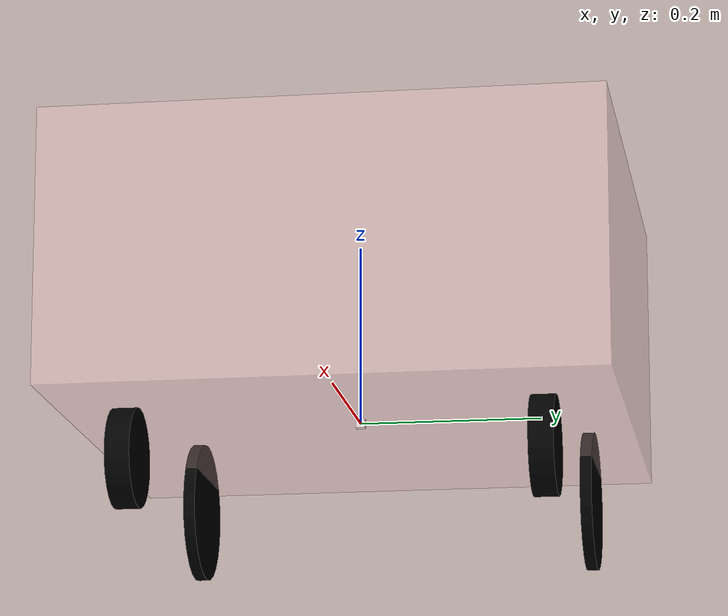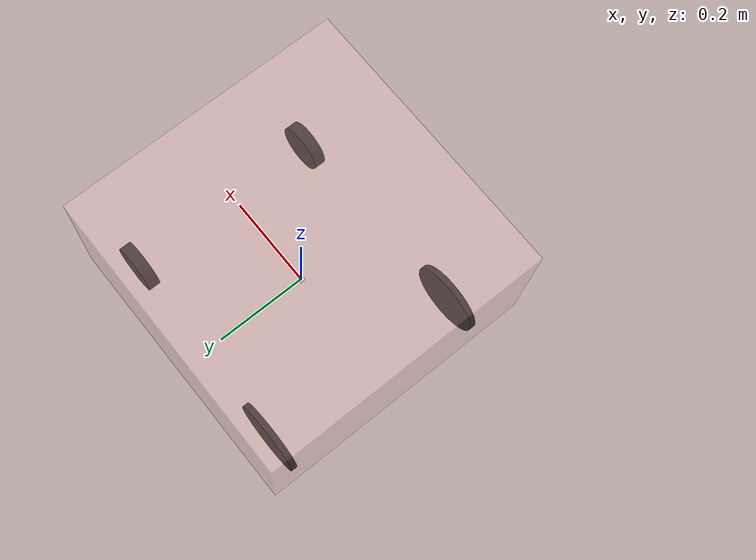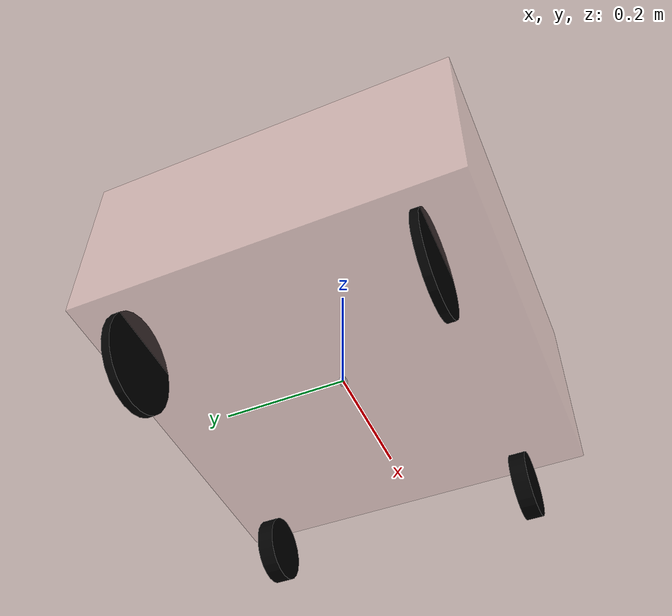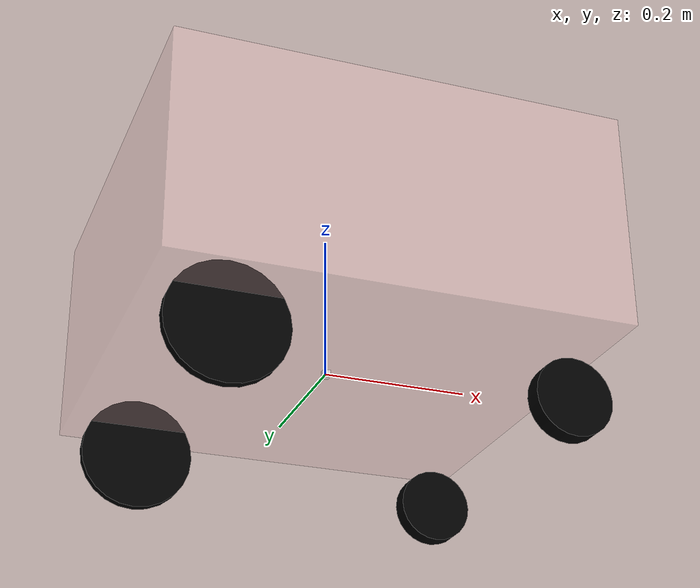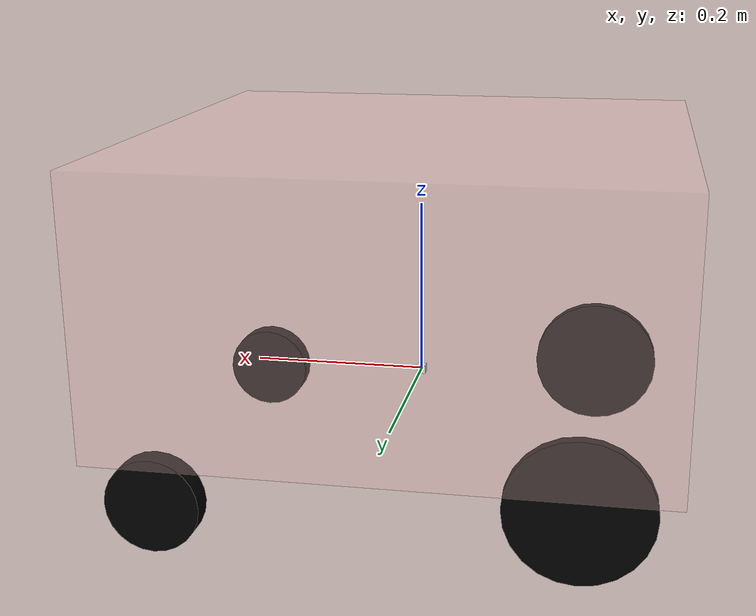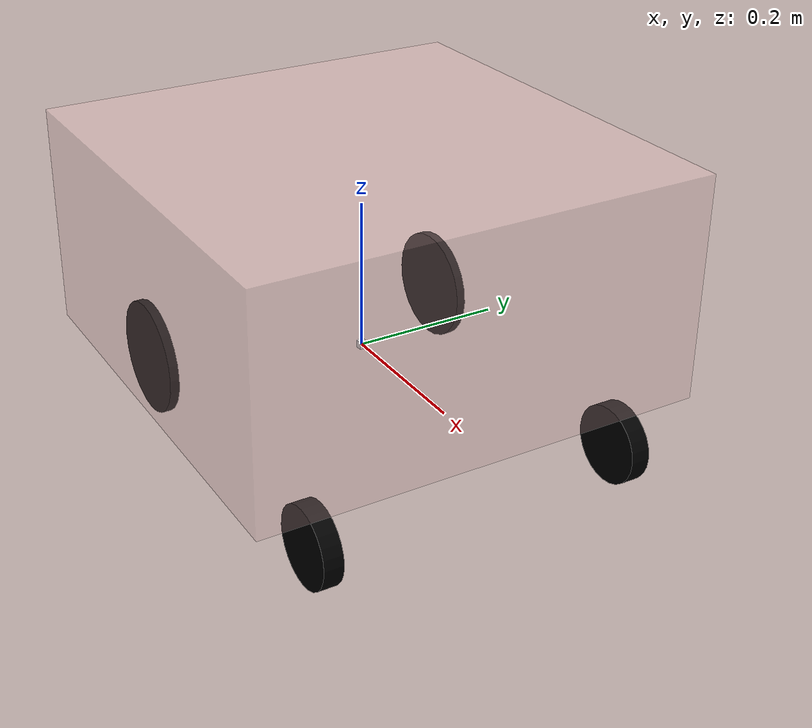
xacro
<?xml version="1.0"?>

<robot
  xmlns:sensor="http://playerstage.sourceforge.net/gazebo/xmlschema/#sensor"
  xmlns:controller="http://playerstage.sourceforge.net/gazebo/xmlschema/#controller"
  xmlns:interface="http://playerstage.sourceforge.net/gazebo/xmlschema/#interface"
  xmlns:xacro="http://www.ros.org/wiki/xacro" name="talos">

  <include filename="$(find talos_description)/urdf/sensors/hokuyo_lx30_laser.urdf.xacro" />

  <property name="M_PI" value="3.14159265359" />

  <property name="caster_offset_x" value="0.25"/>
  <property name="caster_offset_y" value="0.2175"/>
  <property name="caster_offset_z" value="-0.22"/>

  <!-- base laser -->
  <property name="base_laser_x" value="0"/>
  <property name="base_laser_y" value="0"/>
  <property name="base_laser_z" value="0"/>

  <property name="caster_wheel_length" value="0.0261"/>
  <property name="caster_wheel_radius" value="0.0525"/>
  <property name="caster_wheel_y_offset" value="0.01"/>

  <!-- drive wheel distance from right edge: 73mm
       drive wheel distance from back edge: 100mm
       drive wheel distance from bottom: 40mm -->
  <property name="drive_wheel_length" value="0.013"/>
  <property name="drive_wheel_radius" value="0.0789"/>
  <property name="drive_wheel_y_offset" value="0.01"/>
  <property name="drive_wheel_offset_x" value="0.2"/>
  <property name="drive_wheel_offset_y" value="0.227"/>
  <property name="drive_wheel_offset_z" value="-0.19"/>

  <!-- simplified box collision geometry for base -->
  <property name="base_size_x" value="0.6" />
  <property name="base_size_y" value="0.6" />
  <property name="base_size_z" value="0.3" />
  <property name="base_collision_size_z" value="0"/>

  <!-- simplified box collision geometry for planar laser -->
  <property name="base_laser_x" value="0.3"/>
  <property name="base_laser_y" value="0"/>
  <property name="base_laser_z" value="0.15"/>
  <property name="base_laser_size_x" value="0.05"/>
  <property name="base_laser_size_y" value="0.05"/>
  <property name="base_laser_size_z" value="0.07"/>
  <property name="base_laser_collision_offset_z" value="0"/>

  <xacro:macro name="talos_base_v0" params="name">

    <link name="${name}_link">
      <visual>
        <geometry>
          <box size="${base_size_x} ${base_size_y} ${base_size_z}"/>
        </geometry>
        <material name="transparent_grey">
          <color rgba="1 0.8 0.8 0.3"/>
        </material>
      </visual>
    </link>

    <link name="${name}_footprint">

      <inertial>
        <mass value="1.0" />
        <origin xyz="0 0 0" />
        <inertia ixx="0.01" ixy="0.0" ixz="0.0"
                 iyy="0.01" iyz="0.0" izz="0.01" />
      </inertial>

      <visual>
        <origin xyz="0 0 0" rpy="0 0 0" />
        <geometry>
          <box size="0.01 0.01 0.01"/>
        </geometry>
        <material name="white" />
      </visual>

      <collision>
        <!-- represent base collision with a simple rectangular model, positioned by base_size_z s.t. top
             surface of the collision box matches the top surface of the talos base -->
        <origin xyz="0 0 0" rpy="0 0 0" />
        <geometry>
          <box size="0.001 0.001 0.001 " />
        </geometry>
      </collision>

    </link>

    <joint name="${name}_footprint_joint" type="fixed">
      <origin xyz="0 0 0.135" rpy="0 0 0"/>
      <child link="${name}_link" />
      <parent link="${name}_footprint" />
    </joint>

    <!-- base laser -->
    <!-- I believe the update_rate, min?_angle, and max_angle aren't correct as they're taken from the pr2's urg-lx30. we have the urg-04lx -->
    <xacro:hokuyo_lx30_laser_v0 name="${name}_laser" parent="${name}" ros_topic="base_scan" update_rate="20" min_angle="-2.2689" max_angle="2.2689" >
      <origin xyz="${base_laser_x} ${base_laser_y} ${base_laser_z}" rpy="0 0 0" />
    </xacro:hokuyo_lx30_laser_v0>

    <!-- caster wheels -->
    <xacro:talos_caster_v0 suffix="fl" parent="${name}_link">
      <origin xyz="${caster_offset_x} ${caster_offset_y} ${caster_offset_z}" rpy="0 0 0" />
    </xacro:talos_caster_v0>

    <xacro:talos_caster_v0 suffix="fr" parent="${name}_link">
      <origin xyz="${caster_offset_x} ${-caster_offset_y} ${caster_offset_z}" rpy="0 0 0" />
    </xacro:talos_caster_v0>

    <!-- drive wheels -->
    <xacro:talos_drive_v0 suffix="rl" parent="${name}_link">
      <origin xyz="${-drive_wheel_offset_x} ${drive_wheel_offset_y} ${drive_wheel_offset_z}" rpy="0 0 0"/>
    </xacro:talos_drive_v0>

    <xacro:talos_drive_v0 suffix="rr" parent="${name}_link">
      <origin xyz="${-drive_wheel_offset_x} ${-drive_wheel_offset_y} ${drive_wheel_offset_z}" rpy="0 0 0"/>
    </xacro:talos_drive_v0>

  </xacro:macro>

  <xacro:macro name="talos_drive_v0" params="parent suffix *origin">

    <xacro:talos_drive_hub_v0 parent="${parent}" suffix="${suffix}_drive" >
      <insert_block name="origin" />
    </xacro:talos_drive_hub_v0>

    <!-- drive wheel -->
    <xacro:talos_drive_wheel_v0 parent="${suffix}_drive" suffix="l" reflect="1" />

  </xacro:macro>

  <xacro:macro name="talos_drive_hub_v0" params="suffix parent *origin">

    <joint name="${suffix}_rotation_joint" type="continuous">
      <axis xyz="0 0 1" />
      <limit effort="6.5" velocity="10"/>
      <safety_controller k_velocity="10"/>
      <dynamics damping="1.0" friction="0.0" />
      <insert_block name="origin" />
      <parent link="${parent}"/>
      <child link="${suffix}_rotation_link" />
    </joint>

    <link name="${suffix}_rotation_link" >
    </link>

  </xacro:macro>

  <xacro:macro name="talos_drive_wheel_v0" params="parent suffix reflect">

    <joint name="${parent}_${suffix}_wheel" type="fixed">
      <axis xyz="0 1 0" />
      <limit effort="7" velocity="15"/>
      <safety_controller  k_velocity="10" />
      <dynamics damping="1.0" friction="0.0" />
      <origin xyz="0 ${reflect*drive_wheel_y_offset} 0" rpy="0 0 0"/>
      <parent link="${parent}_rotation_link"/>
      <child link="${parent}_${suffix}_wheel_link" />
    </joint>

    <link name="${parent}_${suffix}_wheel_link">
      <visual>
        <!-- rotation bc cyl. geom prim has symmetry axis in +x dir -->
        <origin rpy="${M_PI/2} 0 0"/> <!-- rotation bc cyl. geom prim has symmetry axis in +x dir -->
        <geometry>
          <cylinder length="${drive_wheel_length}" radius="${drive_wheel_radius}"/>
        </geometry>
        <material name="black">
          <color rgba="0 0 0 1"/>
        </material>
      </visual>
    </link>

  </xacro:macro>

  <xacro:macro name="talos_caster_wheel_v0" params="parent suffix reflect">

    <joint name="${parent}_${suffix}_wheel" type="fixed">
      <axis xyz="0 1 0" />
      <limit effort="7" velocity="15"/>
      <safety_controller  k_velocity="10" />
      <dynamics damping="1.0" friction="0.0" />
      <origin xyz="0 ${reflect*drive_wheel_y_offset} 0" rpy="0 0 0"/>
      <parent link="${parent}_rotation_link"/>
      <child link="${parent}_${suffix}_wheel_link" />
    </joint>

    <link name="${parent}_${suffix}_wheel_link">
      <visual>
        <!-- rotation bc cyl. geom prim has symmetry axis in +x dir -->
        <origin rpy="${M_PI/2} 0 0"/> <!-- rotation bc cyl. geom prim has symmetry axis in +x dir -->
        <geometry>
          <cylinder length="${caster_wheel_length}" radius="${caster_wheel_radius}"/>
        </geometry>
        <material name="black">
          <color rgba="0 0 0 1"/>
        </material>
      </visual>
    </link>

  </xacro:macro>

  <xacro:macro name="talos_caster_hub_v0" params="suffix parent *origin">

    <joint name="${suffix}_rotation_joint" type="continuous">
      <axis xyz="0 0 1" />
      <limit effort="6.5" velocity="10"/>
      <safety_controller k_velocity="10"/>
      <dynamics damping="1.0" friction="0.0" />
      <insert_block name="origin" />
      <parent link="${parent}"/>
      <child link="${suffix}_rotation_link" />
    </joint>

    <link name="${suffix}_rotation_link" >
    </link>

  </xacro:macro>

  <xacro:macro name="talos_caster_v0" params="suffix parent *origin">

    <xacro:talos_caster_hub_v0 parent="${parent}" suffix="${suffix}_caster" >
      <insert_block name="origin" />
    </xacro:talos_caster_hub_v0>

    <!-- caster wheel -->
    <xacro:talos_caster_wheel_v0 parent="${suffix}_caster" suffix="l" reflect="1" />

  </xacro:macro>

  <gazebo reference="camera_link">
    <sensor:ray name="base_laser">
      <rayCount>640</rayCount>
      <rangeCount>640</rangeCount>
      <laserCount>1</laserCount>
      <origin>0.0 0.0 0.0</origin>
      <displayRays>false</displayRays>
      <minAngle>-129.998394137</minAngle>
      <maxAngle>129.998394137</maxAngle>
      <minRange>0.08</minRange>
      <maxRange>10.0</maxRange>
      <resRange>0.01</resRange>
      <updateRate>20</updateRate>
      <controller:gazebo_ros_laser name="gazebo_ros_base_laser_controller" plugin="libgazebo_ros_laser.so">
        <gaussianNoise>0.005</gaussianNoise>
        <alwaysOn>true</alwaysOn>
        <updateRate>20</updateRate>
        <topicName>scan</topicName>
        <frameName>base_laser</frameName>
        <interface:laser name="gazebo_ros_base_laser_iface"/>
      </controller:gazebo_ros_laser>
    </sensor:ray>
  </gazebo>

    <xacro:talos_base_v0 name="base"/>

</robot>

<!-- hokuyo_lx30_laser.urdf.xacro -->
<!-- Copy and paster: Devon Ash -->
<!-- Copied from pr2_description/sensors/ -->

<robot xmlns:sensor="http://playerstage.sourceforge.net/gazebo/xmlschema/#sensor"
       xmlns:controller="http://playerstage.sourceforge.net/gazebo/xmlschema/#controller"
       xmlns:interface="http://playerstage.sourceforge.net/gazebo/xmlschema/#interface"
       xmlns:xacro="http://ros.org/wiki/xacro">

  <xacro:include filename="$(find pr2_description)/urdf/sensors/hokuyo_lx30_laser.gazebo.xacro" />

  <xacro:macro name="hokuyo_lx30_laser_v0" params="name parent *origin ros_topic update_rate min_angle max_angle">
    <joint name="${name}_joint" type="fixed">
      <axis xyz="0 1 0" />
      <insert_block name="origin" />
      <parent link="${parent}_link"/>
      <child link="${name}_link"/>
    </joint>
    <link name="${name}_link" type="laser">
      <inertial>
        <mass value="0.001" />
        <origin xyz="0 0 0" rpy="0 0 0" />
        <inertia ixx="0.0001" ixy="0" ixz="0" iyy="0.000001" iyz="0" izz="0.0001" />
      </inertial>
    </link>
    <!-- gazebo extensions -->
    <xacro:hokuyo_lx30_laser_gazebo_v0 name="${name}" ros_topic="${ros_topic}" update_rate="${update_rate}" min_angle="${min_angle}" max_angle="${max_angle}" />
  </xacro:macro>
</robot>
